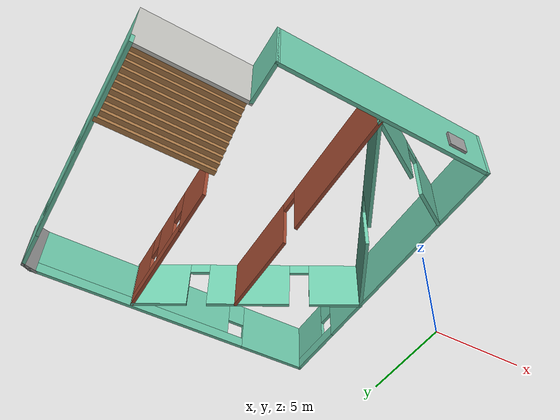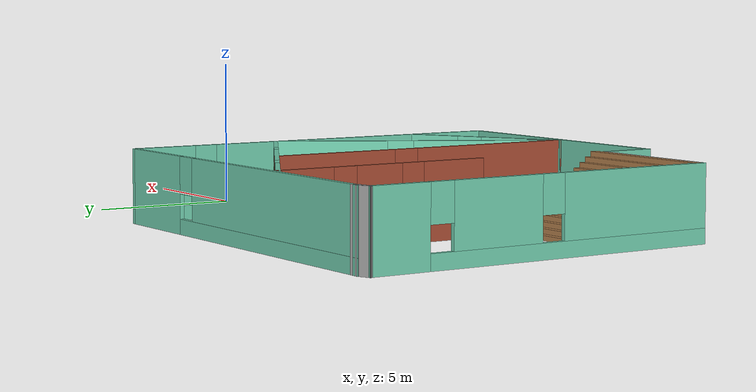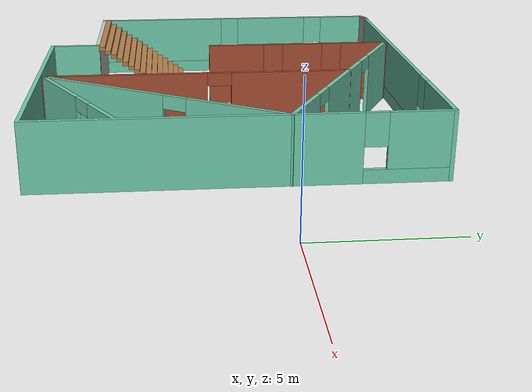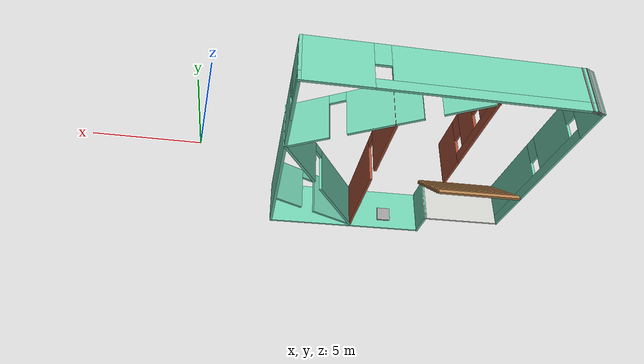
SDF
<?xml version='1.0'?>
<sdf version='1.6'>
  <model name='model'>
    <pose frame=''>-11.0761 -1.35382 0 0 -0 0</pose>
    <link name='Stairs_0'>
      <visual name='Stairs_0_Visual_0'>
        <pose frame=''>-4.53978 -1.74911 0.083333 0 -0 0</pose>
        <geometry>
          <box>
            <size>4.937 0.233333 0.166667</size>
          </box>
        </geometry>
        <material>
          <script>
            <uri>file://media/materials/scripts/gazebo.material</uri>
            <name>Gazebo/Wood</name>
          </script>
          <ambient>1 1 1 1</ambient>
        </material>
        <meta>
          <layer>0</layer>
        </meta>
      </visual>
      <collision name='Stairs_0_Collision_0'>
        <geometry>
          <box>
            <size>4.937 0.233333 0.166667</size>
          </box>
        </geometry>
        <pose frame=''>-4.53978 -1.74911 0.083333 0 -0 0</pose>
      </collision>
      <visual name='Stairs_0_Visual_1'>
        <pose frame=''>-4.53978 -1.98245 0.25 0 -0 0</pose>
        <geometry>
          <box>
            <size>4.937 0.233333 0.166667</size>
          </box>
        </geometry>
        <material>
          <script>
            <uri>file://media/materials/scripts/gazebo.material</uri>
            <name>Gazebo/Wood</name>
          </script>
          <ambient>1 1 1 1</ambient>
        </material>
        <meta>
          <layer>0</layer>
        </meta>
      </visual>
      <collision name='Stairs_0_Collision_1'>
        <geometry>
          <box>
            <size>4.937 0.233333 0.166667</size>
          </box>
        </geometry>
        <pose frame=''>-4.53978 -1.98245 0.25 0 -0 0</pose>
      </collision>
      <visual name='Stairs_0_Visual_2'>
        <pose frame=''>-4.53978 -2.21578 0.416667 0 -0 0</pose>
        <geometry>
          <box>
            <size>4.937 0.233333 0.166667</size>
          </box>
        </geometry>
        <material>
          <script>
            <uri>file://media/materials/scripts/gazebo.material</uri>
            <name>Gazebo/Wood</name>
          </script>
          <ambient>1 1 1 1</ambient>
        </material>
        <meta>
          <layer>0</layer>
        </meta>
      </visual>
      <collision name='Stairs_0_Collision_2'>
        <geometry>
          <box>
            <size>4.937 0.233333 0.166667</size>
          </box>
        </geometry>
        <pose frame=''>-4.53978 -2.21578 0.416667 0 -0 0</pose>
      </collision>
      <visual name='Stairs_0_Visual_3'>
        <pose frame=''>-4.53978 -2.44911 0.583333 0 -0 0</pose>
        <geometry>
          <box>
            <size>4.937 0.233333 0.166667</size>
          </box>
        </geometry>
        <material>
          <script>
            <uri>file://media/materials/scripts/gazebo.material</uri>
            <name>Gazebo/Wood</name>
          </script>
          <ambient>1 1 1 1</ambient>
        </material>
        <meta>
          <layer>0</layer>
        </meta>
      </visual>
      <collision name='Stairs_0_Collision_3'>
        <geometry>
          <box>
            <size>4.937 0.233333 0.166667</size>
          </box>
        </geometry>
        <pose frame=''>-4.53978 -2.44911 0.583333 0 -0 0</pose>
      </collision>
      <visual name='Stairs_0_Visual_4'>
        <pose frame=''>-4.53978 -2.68245 0.75 0 -0 0</pose>
        <geometry>
          <box>
            <size>4.937 0.233333 0.166667</size>
          </box>
        </geometry>
        <material>
          <script>
            <uri>file://media/materials/scripts/gazebo.material</uri>
            <name>Gazebo/Wood</name>
          </script>
          <ambient>1 1 1 1</ambient>
        </material>
        <meta>
          <layer>0</layer>
        </meta>
      </visual>
      <collision name='Stairs_0_Collision_4'>
        <geometry>
          <box>
            <size>4.937 0.233333 0.166667</size>
          </box>
        </geometry>
        <pose frame=''>-4.53978 -2.68245 0.75 0 -0 0</pose>
      </collision>
      <visual name='Stairs_0_Visual_5'>
        <pose frame=''>-4.53978 -2.91578 0.916667 0 -0 0</pose>
        <geometry>
          <box>
            <size>4.937 0.233333 0.166667</size>
          </box>
        </geometry>
        <material>
          <script>
            <uri>file://media/materials/scripts/gazebo.material</uri>
            <name>Gazebo/Wood</name>
          </script>
          <ambient>1 1 1 1</ambient>
        </material>
        <meta>
          <layer>0</layer>
        </meta>
      </visual>
      <collision name='Stairs_0_Collision_5'>
        <geometry>
          <box>
            <size>4.937 0.233333 0.166667</size>
          </box>
        </geometry>
        <pose frame=''>-4.53978 -2.91578 0.916667 0 -0 0</pose>
      </collision>
      <visual name='Stairs_0_Visual_6'>
        <pose frame=''>-4.53978 -3.14911 1.08333 0 -0 0</pose>
        <geometry>
          <box>
            <size>4.937 0.233333 0.166667</size>
          </box>
        </geometry>
        <material>
          <script>
            <uri>file://media/materials/scripts/gazebo.material</uri>
            <name>Gazebo/Wood</name>
          </script>
          <ambient>1 1 1 1</ambient>
        </material>
        <meta>
          <layer>0</layer>
        </meta>
      </visual>
      <collision name='Stairs_0_Collision_6'>
        <geometry>
          <box>
            <size>4.937 0.233333 0.166667</size>
          </box>
        </geometry>
        <pose frame=''>-4.53978 -3.14911 1.08333 0 -0 0</pose>
      </collision>
      <visual name='Stairs_0_Visual_7'>
        <pose frame=''>-4.53978 -3.38245 1.25 0 -0 0</pose>
        <geometry>
          <box>
            <size>4.937 0.233333 0.166667</size>
          </box>
        </geometry>
        <material>
          <script>
            <uri>file://media/materials/scripts/gazebo.material</uri>
            <name>Gazebo/Wood</name>
          </script>
          <ambient>1 1 1 1</ambient>
        </material>
        <meta>
          <layer>0</layer>
        </meta>
      </visual>
      <collision name='Stairs_0_Collision_7'>
        <geometry>
          <box>
            <size>4.937 0.233333 0.166667</size>
          </box>
        </geometry>
        <pose frame=''>-4.53978 -3.38245 1.25 0 -0 0</pose>
      </collision>
      <visual name='Stairs_0_Visual_8'>
        <pose frame=''>-4.53978 -3.61578 1.41667 0 -0 0</pose>
        <geometry>
          <box>
            <size>4.937 0.233333 0.166667</size>
          </box>
        </geometry>
        <material>
          <script>
            <uri>file://media/materials/scripts/gazebo.material</uri>
            <name>Gazebo/Wood</name>
          </script>
          <ambient>1 1 1 1</ambient>
        </material>
        <meta>
          <layer>0</layer>
        </meta>
      </visual>
      <collision name='Stairs_0_Collision_8'>
        <geometry>
          <box>
            <size>4.937 0.233333 0.166667</size>
          </box>
        </geometry>
        <pose frame=''>-4.53978 -3.61578 1.41667 0 -0 0</pose>
      </collision>
      <visual name='Stairs_0_Visual_9'>
        <pose frame=''>-4.53978 -3.84911 1.58333 0 -0 0</pose>
        <geometry>
          <box>
            <size>4.937 0.233333 0.166667</size>
          </box>
        </geometry>
        <material>
          <script>
            <uri>file://media/materials/scripts/gazebo.material</uri>
            <name>Gazebo/Wood</name>
          </script>
          <ambient>1 1 1 1</ambient>
        </material>
        <meta>
          <layer>0</layer>
        </meta>
      </visual>
      <collision name='Stairs_0_Collision_9'>
        <geometry>
          <box>
            <size>4.937 0.233333 0.166667</size>
          </box>
        </geometry>
        <pose frame=''>-4.53978 -3.84911 1.58333 0 -0 0</pose>
      </collision>
      <visual name='Stairs_0_Visual_10'>
        <pose frame=''>-4.53978 -4.08245 1.75 0 -0 0</pose>
        <geometry>
          <box>
            <size>4.937 0.233333 0.166667</size>
          </box>
        </geometry>
        <material>
          <script>
            <uri>file://media/materials/scripts/gazebo.material</uri>
            <name>Gazebo/Wood</name>
          </script>
          <ambient>1 1 1 1</ambient>
        </material>
        <meta>
          <layer>0</layer>
        </meta>
      </visual>
      <collision name='Stairs_0_Collision_10'>
        <geometry>
          <box>
            <size>4.937 0.233333 0.166667</size>
          </box>
        </geometry>
        <pose frame=''>-4.53978 -4.08245 1.75 0 -0 0</pose>
      </collision>
      <visual name='Stairs_0_Visual_11'>
        <pose frame=''>-4.53978 -4.31578 1.91667 0 -0 0</pose>
        <geometry>
          <box>
            <size>4.937 0.233333 0.166667</size>
          </box>
        </geometry>
        <material>
          <script>
            <uri>file://media/materials/scripts/gazebo.material</uri>
            <name>Gazebo/Wood</name>
          </script>
          <ambient>1 1 1 1</ambient>
        </material>
        <meta>
          <layer>0</layer>
        </meta>
      </visual>
      <collision name='Stairs_0_Collision_11'>
        <geometry>
          <box>
            <size>4.937 0.233333 0.166667</size>
          </box>
        </geometry>
        <pose frame=''>-4.53978 -4.31578 1.91667 0 -0 0</pose>
      </collision>
      <visual name='Stairs_0_Visual_12'>
        <pose frame=''>-4.53978 -4.54911 2.08333 0 -0 0</pose>
        <geometry>
          <box>
            <size>4.937 0.233333 0.166667</size>
          </box>
        </geometry>
        <material>
          <script>
            <uri>file://media/materials/scripts/gazebo.material</uri>
            <name>Gazebo/Wood</name>
          </script>
          <ambient>1 1 1 1</ambient>
        </material>
        <meta>
          <layer>0</layer>
        </meta>
      </visual>
      <collision name='Stairs_0_Collision_12'>
        <geometry>
          <box>
            <size>4.937 0.233333 0.166667</size>
          </box>
        </geometry>
        <pose frame=''>-4.53978 -4.54911 2.08333 0 -0 0</pose>
      </collision>
      <visual name='Stairs_0_Visual_13'>
        <pose frame=''>-4.53978 -4.78245 2.25 0 -0 0</pose>
        <geometry>
          <box>
            <size>4.937 0.233333 0.166667</size>
          </box>
        </geometry>
        <material>
          <script>
            <uri>file://media/materials/scripts/gazebo.material</uri>
            <name>Gazebo/Wood</name>
          </script>
          <ambient>1 1 1 1</ambient>
        </material>
        <meta>
          <layer>0</layer>
        </meta>
      </visual>
      <collision name='Stairs_0_Collision_13'>
        <geometry>
          <box>
            <size>4.937 0.233333 0.166667</size>
          </box>
        </geometry>
        <pose frame=''>-4.53978 -4.78245 2.25 0 -0 0</pose>
      </collision>
      <visual name='Stairs_0_Visual_14'>
        <pose frame=''>-4.53978 -5.01578 2.41667 0 -0 0</pose>
        <geometry>
          <box>
            <size>4.937 0.233333 0.166667</size>
          </box>
        </geometry>
        <material>
          <script>
            <uri>file://media/materials/scripts/gazebo.material</uri>
            <name>Gazebo/Wood</name>
          </script>
          <ambient>1 1 1 1</ambient>
        </material>
        <meta>
          <layer>0</layer>
        </meta>
      </visual>
      <collision name='Stairs_0_Collision_14'>
        <geometry>
          <box>
            <size>4.937 0.233333 0.166667</size>
          </box>
        </geometry>
        <pose frame=''>-4.53978 -5.01578 2.41667 0 -0 0</pose>
      </collision>
    </link>
    <link name='Wall_0'>
      <pose frame=''>-6.98409 0.83826 0 0 0 -1.5708</pose>
      <visual name='Wall_0_Visual_0'>
        <pose frame=''>-5.11709 0 1.25 0 -0 0</pose>
        <geometry>
          <box>
            <size>2.01582 0.15 2.5</size>
          </box>
        </geometry>
        <material>
          <script>
            <uri>file://media/materials/scripts/gazebo.material</uri>
            <name>Gazebo/Grey</name>
          </script>
          <ambient>0.435294 0.796078 0.67451 1</ambient>
        </material>
        <meta>
          <layer>0</layer>
        </meta>
      </visual>
      <collision name='Wall_0_Collision_0'>
        <geometry>
          <box>
            <size>2.01582 0.15 2.5</size>
          </box>
        </geometry>
        <pose frame=''>-5.11709 0 1.25 0 -0 0</pose>
      </collision>
      <visual name='Wall_0_Visual_1'>
        <pose frame=''>1.00791 0 0.25 0 -0 0</pose>
        <geometry>
          <box>
            <size>10.2342 0.15 0.5</size>
          </box>
        </geometry>
        <material>
          <script>
            <uri>file://media/materials/scripts/gazebo.material</uri>
            <name>Gazebo/Grey</name>
          </script>
          <ambient>0.435294 0.796078 0.67451 1</ambient>
        </material>
        <meta>
          <layer>0</layer>
        </meta>
      </visual>
      <collision name='Wall_0_Collision_1'>
        <geometry>
          <box>
            <size>10.2342 0.15 0.5</size>
          </box>
        </geometry>
        <pose frame=''>1.00791 0 0.25 0 -0 0</pose>
      </collision>
      <visual name='Wall_0_Visual_2'>
        <pose frame=''>-1.74077 0 1.5 0 -0 0</pose>
        <geometry>
          <box>
            <size>3.13683 0.15 2</size>
          </box>
        </geometry>
        <material>
          <script>
            <uri>file://media/materials/scripts/gazebo.material</uri>
            <name>Gazebo/Grey</name>
          </script>
          <ambient>0.435294 0.796078 0.67451 1</ambient>
        </material>
        <meta>
          <layer>0</layer>
        </meta>
      </visual>
      <collision name='Wall_0_Collision_2'>
        <geometry>
          <box>
            <size>3.13683 0.15 2</size>
          </box>
        </geometry>
        <pose frame=''>-1.74077 0 1.5 0 -0 0</pose>
      </collision>
      <visual name='Wall_0_Visual_3'>
        <pose frame=''>3.37632 0 1.5 0 -0 0</pose>
        <geometry>
          <box>
            <size>5.49735 0.15 2</size>
          </box>
        </geometry>
        <material>
          <script>
            <uri>file://media/materials/scripts/gazebo.material</uri>
            <name>Gazebo/Grey</name>
          </script>
          <ambient>0.435294 0.796078 0.67451 1</ambient>
        </material>
        <meta>
          <layer>0</layer>
        </meta>
      </visual>
      <collision name='Wall_0_Collision_3'>
        <geometry>
          <box>
            <size>5.49735 0.15 2</size>
          </box>
        </geometry>
        <pose frame=''>3.37632 0 1.5 0 -0 0</pose>
      </collision>
      <visual name='Wall_0_Visual_4'>
        <pose frame=''>-3.70918 0 1.9 0 -0 0</pose>
        <geometry>
          <box>
            <size>0.8 0.15 1.2</size>
          </box>
        </geometry>
        <material>
          <script>
            <uri>file://media/materials/scripts/gazebo.material</uri>
            <name>Gazebo/Grey</name>
          </script>
          <ambient>0.435294 0.796078 0.67451 1</ambient>
        </material>
        <meta>
          <layer>0</layer>
        </meta>
      </visual>
      <collision name='Wall_0_Collision_4'>
        <geometry>
          <box>
            <size>0.8 0.15 1.2</size>
          </box>
        </geometry>
        <pose frame=''>-3.70918 0 1.9 0 -0 0</pose>
      </collision>
      <visual name='Wall_0_Visual_5'>
        <pose frame=''>0.227647 0 1.9 0 -0 0</pose>
        <geometry>
          <box>
            <size>0.8 0.15 1.2</size>
          </box>
        </geometry>
        <material>
          <script>
            <uri>file://media/materials/scripts/gazebo.material</uri>
            <name>Gazebo/Grey</name>
          </script>
          <ambient>0.435294 0.796078 0.67451 1</ambient>
        </material>
        <meta>
          <layer>0</layer>
        </meta>
      </visual>
      <collision name='Wall_0_Collision_5'>
        <geometry>
          <box>
            <size>0.8 0.15 1.2</size>
          </box>
        </geometry>
        <pose frame=''>0.227647 0 1.9 0 -0 0</pose>
      </collision>
    </link>
    <link name='Wall_1'>
      <collision name='Wall_1_Collision'>
        <geometry>
          <box>
            <size>4.75 0.15 2.5</size>
          </box>
        </geometry>
        <pose frame=''>0 0 1.25 0 -0 0</pose>
      </collision>
      <visual name='Wall_1_Visual'>
        <pose frame=''>0 0 1.25 0 -0 0</pose>
        <geometry>
          <box>
            <size>4.75 0.15 2.5</size>
          </box>
        </geometry>
        <material>
          <script>
            <uri>file://media/materials/scripts/gazebo.material</uri>
            <name>Gazebo/CeilingTiled</name>
          </script>
          <ambient>1 1 1 1</ambient>
        </material>
        <meta>
          <layer>0</layer>
        </meta>
      </visual>
      <pose frame=''>-4.68409 -5.21174 0 0 -0 0</pose>
    </link>
    <link name='Wall_10'>
      <collision name='Wall_10_Collision'>
        <geometry>
          <box>
            <size>0.75 0.15 2.5</size>
          </box>
        </geometry>
        <pose frame=''>0 0 1.25 0 -0 0</pose>
      </collision>
      <visual name='Wall_10_Visual'>
        <pose frame=''>0 0 1.25 0 -0 0</pose>
        <geometry>
          <box>
            <size>0.75 0.15 2.5</size>
          </box>
        </geometry>
        <material>
          <script>
            <uri>file://media/materials/scripts/gazebo.material</uri>
            <name>Gazebo/Grey</name>
          </script>
          <ambient>1 1 1 1</ambient>
        </material>
        <meta>
          <layer>0</layer>
        </meta>
      </visual>
      <pose frame=''>-6.69431 6.96591 0 0 -0 0.261799</pose>
    </link>
    <link name='Wall_13'>
      <pose frame=''>-1.98325 3.1684 0 0 -0 1.5708</pose>
      <visual name='Wall_13_Visual_0'>
        <pose frame=''>-2.60909 0 1.25 0 -0 0</pose>
        <geometry>
          <box>
            <size>2.28182 0.15 2.5</size>
          </box>
        </geometry>
        <material>
          <script>
            <uri>file://media/materials/scripts/gazebo.material</uri>
            <name>Gazebo/Bricks</name>
          </script>
          <ambient>1 1 1 1</ambient>
        </material>
        <meta>
          <layer>0</layer>
        </meta>
      </visual>
      <collision name='Wall_13_Collision_0'>
        <geometry>
          <box>
            <size>2.28182 0.15 2.5</size>
          </box>
        </geometry>
        <pose frame=''>-2.60909 0 1.25 0 -0 0</pose>
      </collision>
      <visual name='Wall_13_Visual_1'>
        <pose frame=''>1.14091 0 0.25 0 -0 0</pose>
        <geometry>
          <box>
            <size>5.21818 0.15 0.5</size>
          </box>
        </geometry>
        <material>
          <script>
            <uri>file://media/materials/scripts/gazebo.material</uri>
            <name>Gazebo/Bricks</name>
          </script>
          <ambient>1 1 1 1</ambient>
        </material>
        <meta>
          <layer>0</layer>
        </meta>
      </visual>
      <collision name='Wall_13_Collision_1'>
        <geometry>
          <box>
            <size>5.21818 0.15 0.5</size>
          </box>
        </geometry>
        <pose frame=''>1.14091 0 0.25 0 -0 0</pose>
      </collision>
      <visual name='Wall_13_Visual_2'>
        <pose frame=''>0.155429 0 1.5 0 -0 0</pose>
        <geometry>
          <box>
            <size>1.64722 0.15 2</size>
          </box>
        </geometry>
        <material>
          <script>
            <uri>file://media/materials/scripts/gazebo.material</uri>
            <name>Gazebo/Bricks</name>
          </script>
          <ambient>1 1 1 1</ambient>
        </material>
        <meta>
          <layer>0</layer>
        </meta>
      </visual>
      <collision name='Wall_13_Collision_2'>
        <geometry>
          <box>
            <size>1.64722 0.15 2</size>
          </box>
        </geometry>
        <pose frame=''>0.155429 0 1.5 0 -0 0</pose>
      </collision>
      <visual name='Wall_13_Visual_3'>
        <pose frame=''>2.76452 0 1.5 0 -0 0</pose>
        <geometry>
          <box>
            <size>1.97096 0.15 2</size>
          </box>
        </geometry>
        <material>
          <script>
            <uri>file://media/materials/scripts/gazebo.material</uri>
            <name>Gazebo/Bricks</name>
          </script>
          <ambient>1 1 1 1</ambient>
        </material>
        <meta>
          <layer>0</layer>
        </meta>
      </visual>
      <collision name='Wall_13_Collision_3'>
        <geometry>
          <box>
            <size>1.97096 0.15 2</size>
          </box>
        </geometry>
        <pose frame=''>2.76452 0 1.5 0 -0 0</pose>
      </collision>
      <visual name='Wall_13_Visual_4'>
        <pose frame=''>-1.06818 0 1.9 0 -0 0</pose>
        <geometry>
          <box>
            <size>0.8 0.15 1.2</size>
          </box>
        </geometry>
        <material>
          <script>
            <uri>file://media/materials/scripts/gazebo.material</uri>
            <name>Gazebo/Bricks</name>
          </script>
          <ambient>1 1 1 1</ambient>
        </material>
        <meta>
          <layer>0</layer>
        </meta>
      </visual>
      <collision name='Wall_13_Collision_4'>
        <geometry>
          <box>
            <size>0.8 0.15 1.2</size>
          </box>
        </geometry>
        <pose frame=''>-1.06818 0 1.9 0 -0 0</pose>
      </collision>
      <visual name='Wall_13_Visual_5'>
        <pose frame=''>1.37904 0 1.9 0 -0 0</pose>
        <geometry>
          <box>
            <size>0.8 0.15 1.2</size>
          </box>
        </geometry>
        <material>
          <script>
            <uri>file://media/materials/scripts/gazebo.material</uri>
            <name>Gazebo/Bricks</name>
          </script>
          <ambient>1 1 1 1</ambient>
        </material>
        <meta>
          <layer>0</layer>
        </meta>
      </visual>
      <collision name='Wall_13_Collision_5'>
        <geometry>
          <box>
            <size>0.8 0.15 1.2</size>
          </box>
        </geometry>
        <pose frame=''>1.37904 0 1.9 0 -0 0</pose>
      </collision>
    </link>
    <link name='Wall_14'>
      <pose frame=''>2.49843 4.25591 0 0 0 -0.523599</pose>
      <visual name='Wall_14_Visual_0'>
        <pose frame=''>-3.9936 0 1.25 0 -0 0</pose>
        <geometry>
          <box>
            <size>2.51281 0.15 2.5</size>
          </box>
        </geometry>
        <material>
          <script>
            <uri>file://media/materials/scripts/gazebo.material</uri>
            <name>Gazebo/Grey</name>
          </script>
          <ambient>0.435294 0.796078 0.67451 1</ambient>
        </material>
        <meta>
          <layer>0</layer>
        </meta>
      </visual>
      <collision name='Wall_14_Collision_0'>
        <geometry>
          <box>
            <size>2.51281 0.15 2.5</size>
          </box>
        </geometry>
        <pose frame=''>-3.9936 0 1.25 0 -0 0</pose>
      </collision>
      <visual name='Wall_14_Visual_1'>
        <pose frame=''>0.048779 0 1.25 0 -0 0</pose>
        <geometry>
          <box>
            <size>3.77195 0.15 2.5</size>
          </box>
        </geometry>
        <material>
          <script>
            <uri>file://media/materials/scripts/gazebo.material</uri>
            <name>Gazebo/Grey</name>
          </script>
          <ambient>0.435294 0.796078 0.67451 1</ambient>
        </material>
        <meta>
          <layer>0</layer>
        </meta>
      </visual>
      <collision name='Wall_14_Collision_1'>
        <geometry>
          <box>
            <size>3.77195 0.15 2.5</size>
          </box>
        </geometry>
        <pose frame=''>0.048779 0 1.25 0 -0 0</pose>
      </collision>
      <visual name='Wall_14_Visual_2'>
        <pose frame=''>4.04238 0 1.25 0 -0 0</pose>
        <geometry>
          <box>
            <size>2.41525 0.15 2.5</size>
          </box>
        </geometry>
        <material>
          <script>
            <uri>file://media/materials/scripts/gazebo.material</uri>
            <name>Gazebo/Grey</name>
          </script>
          <ambient>0.435294 0.796078 0.67451 1</ambient>
        </material>
        <meta>
          <layer>0</layer>
        </meta>
      </visual>
      <collision name='Wall_14_Collision_2'>
        <geometry>
          <box>
            <size>2.41525 0.15 2.5</size>
          </box>
        </geometry>
        <pose frame=''>4.04238 0 1.25 0 -0 0</pose>
      </collision>
      <visual name='Wall_14_Visual_3'>
        <pose frame=''>-2.2872 0 2.25 0 -0 0</pose>
        <geometry>
          <box>
            <size>0.9 0.15 0.5</size>
          </box>
        </geometry>
        <material>
          <script>
            <uri>file://media/materials/scripts/gazebo.material</uri>
            <name>Gazebo/Grey</name>
          </script>
          <ambient>0.435294 0.796078 0.67451 1</ambient>
        </material>
        <meta>
          <layer>0</layer>
        </meta>
      </visual>
      <collision name='Wall_14_Collision_3'>
        <geometry>
          <box>
            <size>0.9 0.15 0.5</size>
          </box>
        </geometry>
        <pose frame=''>-2.2872 0 2.25 0 -0 0</pose>
      </collision>
      <visual name='Wall_14_Visual_4'>
        <pose frame=''>2.38475 0 2.25 0 -0 0</pose>
        <geometry>
          <box>
            <size>0.9 0.15 0.5</size>
          </box>
        </geometry>
        <material>
          <script>
            <uri>file://media/materials/scripts/gazebo.material</uri>
            <name>Gazebo/Grey</name>
          </script>
          <ambient>0.435294 0.796078 0.67451 1</ambient>
        </material>
        <meta>
          <layer>0</layer>
        </meta>
      </visual>
      <collision name='Wall_14_Collision_4'>
        <geometry>
          <box>
            <size>0.9 0.15 0.5</size>
          </box>
        </geometry>
        <pose frame=''>2.38475 0 2.25 0 -0 0</pose>
      </collision>
    </link>
    <link name='Wall_15'>
      <pose frame=''>4.51761 -2.59677 0 0 0 -2.0944</pose>
      <visual name='Wall_15_Visual_0'>
        <pose frame=''>-3.01974 0 1.25 0 -0 0</pose>
        <geometry>
          <box>
            <size>3.96052 0.15 2.5</size>
          </box>
        </geometry>
        <material>
          <script>
            <uri>file://media/materials/scripts/gazebo.material</uri>
            <name>Gazebo/Grey</name>
          </script>
          <ambient>0.435294 0.796078 0.67451 1</ambient>
        </material>
        <meta>
          <layer>0</layer>
        </meta>
      </visual>
      <collision name='Wall_15_Collision_0'>
        <geometry>
          <box>
            <size>3.96052 0.15 2.5</size>
          </box>
        </geometry>
        <pose frame=''>-3.01974 0 1.25 0 -0 0</pose>
      </collision>
      <visual name='Wall_15_Visual_1'>
        <pose frame=''>2.43026 0 1.25 0 -0 0</pose>
        <geometry>
          <box>
            <size>5.13948 0.15 2.5</size>
          </box>
        </geometry>
        <material>
          <script>
            <uri>file://media/materials/scripts/gazebo.material</uri>
            <name>Gazebo/Grey</name>
          </script>
          <ambient>0.435294 0.796078 0.67451 1</ambient>
        </material>
        <meta>
          <layer>0</layer>
        </meta>
      </visual>
      <collision name='Wall_15_Collision_1'>
        <geometry>
          <box>
            <size>5.13948 0.15 2.5</size>
          </box>
        </geometry>
        <pose frame=''>2.43026 0 1.25 0 -0 0</pose>
      </collision>
      <visual name='Wall_15_Visual_2'>
        <pose frame=''>-0.589479 0 2.25 0 -0 0</pose>
        <geometry>
          <box>
            <size>0.9 0.15 0.5</size>
          </box>
        </geometry>
        <material>
          <script>
            <uri>file://media/materials/scripts/gazebo.material</uri>
            <name>Gazebo/Grey</name>
          </script>
          <ambient>0.435294 0.796078 0.67451 1</ambient>
        </material>
        <meta>
          <layer>0</layer>
        </meta>
      </visual>
      <collision name='Wall_15_Collision_2'>
        <geometry>
          <box>
            <size>0.9 0.15 0.5</size>
          </box>
        </geometry>
        <pose frame=''>-0.589479 0 2.25 0 -0 0</pose>
      </collision>
    </link>
    <link name='Wall_16'>
      <pose frame=''>4.47999 -5.46195 0 0 -0 0.523599</pose>
      <visual name='Wall_16_Visual_0'>
        <pose frame=''>-1.38826 0 1.25 0 -0 0</pose>
        <geometry>
          <box>
            <size>2.97348 0.15 2.5</size>
          </box>
        </geometry>
        <material>
          <script>
            <uri>file://media/materials/scripts/gazebo.material</uri>
            <name>Gazebo/Grey</name>
          </script>
          <ambient>0.435294 0.796078 0.67451 1</ambient>
        </material>
        <meta>
          <layer>0</layer>
        </meta>
      </visual>
      <collision name='Wall_16_Collision_0'>
        <geometry>
          <box>
            <size>2.97348 0.15 2.5</size>
          </box>
        </geometry>
        <pose frame=''>-1.38826 0 1.25 0 -0 0</pose>
      </collision>
      <visual name='Wall_16_Visual_1'>
        <pose frame=''>1.93674 0 1.25 0 -0 0</pose>
        <geometry>
          <box>
            <size>1.87652 0.15 2.5</size>
          </box>
        </geometry>
        <material>
          <script>
            <uri>file://media/materials/scripts/gazebo.material</uri>
            <name>Gazebo/Grey</name>
          </script>
          <ambient>0.435294 0.796078 0.67451 1</ambient>
        </material>
        <meta>
          <layer>0</layer>
        </meta>
      </visual>
      <collision name='Wall_16_Collision_1'>
        <geometry>
          <box>
            <size>1.87652 0.15 2.5</size>
          </box>
        </geometry>
        <pose frame=''>1.93674 0 1.25 0 -0 0</pose>
      </collision>
      <visual name='Wall_16_Visual_2'>
        <pose frame=''>0.548482 0 2.25 0 -0 0</pose>
        <geometry>
          <box>
            <size>0.9 0.15 0.5</size>
          </box>
        </geometry>
        <material>
          <script>
            <uri>file://media/materials/scripts/gazebo.material</uri>
            <name>Gazebo/Grey</name>
          </script>
          <ambient>0.435294 0.796078 0.67451 1</ambient>
        </material>
        <meta>
          <layer>0</layer>
        </meta>
      </visual>
      <collision name='Wall_16_Collision_2'>
        <geometry>
          <box>
            <size>0.9 0.15 0.5</size>
          </box>
        </geometry>
        <pose frame=''>0.548482 0 2.25 0 -0 0</pose>
      </collision>
    </link>
    <link name='Wall_19'>
      <pose frame=''>2.05511 -1.18694 0 0 -0 1.5708</pose>
      <visual name='Wall_19_Visual_0'>
        <pose frame=''>-2.70662 0 1.25 0 -0 0</pose>
        <geometry>
          <box>
            <size>6.08675 0.15 2.5</size>
          </box>
        </geometry>
        <material>
          <script>
            <uri>file://media/materials/scripts/gazebo.material</uri>
            <name>Gazebo/Bricks</name>
          </script>
          <ambient>1 1 1 1</ambient>
        </material>
        <meta>
          <layer>0</layer>
        </meta>
      </visual>
      <collision name='Wall_19_Collision_0'>
        <geometry>
          <box>
            <size>6.08675 0.15 2.5</size>
          </box>
        </geometry>
        <pose frame=''>-2.70662 0 1.25 0 -0 0</pose>
      </collision>
      <visual name='Wall_19_Visual_1'>
        <pose frame=''>3.49337 0 1.25 0 -0 0</pose>
        <geometry>
          <box>
            <size>4.51325 0.15 2.5</size>
          </box>
        </geometry>
        <material>
          <script>
            <uri>file://media/materials/scripts/gazebo.material</uri>
            <name>Gazebo/Bricks</name>
          </script>
          <ambient>1 1 1 1</ambient>
        </material>
        <meta>
          <layer>0</layer>
        </meta>
      </visual>
      <collision name='Wall_19_Collision_1'>
        <geometry>
          <box>
            <size>4.51325 0.15 2.5</size>
          </box>
        </geometry>
        <pose frame=''>3.49337 0 1.25 0 -0 0</pose>
      </collision>
      <visual name='Wall_19_Visual_2'>
        <pose frame=''>0.786751 0 2.25 0 -0 0</pose>
        <geometry>
          <box>
            <size>0.9 0.15 0.5</size>
          </box>
        </geometry>
        <material>
          <script>
            <uri>file://media/materials/scripts/gazebo.material</uri>
            <name>Gazebo/Bricks</name>
          </script>
          <ambient>1 1 1 1</ambient>
        </material>
        <meta>
          <layer>0</layer>
        </meta>
      </visual>
      <collision name='Wall_19_Collision_2'>
        <geometry>
          <box>
            <size>0.9 0.15 0.5</size>
          </box>
        </geometry>
        <pose frame=''>0.786751 0 2.25 0 -0 0</pose>
      </collision>
    </link>
    <link name='Wall_2'>
      <collision name='Wall_2_Collision'>
        <geometry>
          <box>
            <size>2 0.15 2.5</size>
          </box>
        </geometry>
        <pose frame=''>0 0 1.25 0 -0 0</pose>
      </collision>
      <visual name='Wall_2_Visual'>
        <pose frame=''>0 0 1.25 0 -0 0</pose>
        <geometry>
          <box>
            <size>2 0.15 2.5</size>
          </box>
        </geometry>
        <material>
          <script>
            <uri>file://media/materials/scripts/gazebo.material</uri>
            <name>Gazebo/Grey</name>
          </script>
          <ambient>0.435294 0.796078 0.67451 1</ambient>
        </material>
        <meta>
          <layer>0</layer>
        </meta>
      </visual>
      <pose frame=''>-2.38409 -6.13674 0 0 0 -1.5708</pose>
    </link>
    <link name='Wall_3'>
      <collision name='Wall_3_Collision'>
        <geometry>
          <box>
            <size>9.5 0.15 2.5</size>
          </box>
        </geometry>
        <pose frame=''>0 0 1.25 0 -0 0</pose>
      </collision>
      <visual name='Wall_3_Visual'>
        <pose frame=''>0 0 1.25 0 -0 0</pose>
        <geometry>
          <box>
            <size>9.5 0.15 2.5</size>
          </box>
        </geometry>
        <material>
          <script>
            <uri>file://media/materials/scripts/gazebo.material</uri>
            <name>Gazebo/Grey</name>
          </script>
          <ambient>0.435294 0.796078 0.67451 1</ambient>
        </material>
        <meta>
          <layer>0</layer>
        </meta>
      </visual>
      <pose frame=''>2.29091 -7.06174 0 0 -0 0</pose>
    </link>
    <link name='Wall_4'>
      <pose frame=''>6.96591 -0.011739 0 0 -0 1.5708</pose>
      <visual name='Wall_4_Visual_0'>
        <pose frame=''>-1.53611 0 1.25 0 -0 0</pose>
        <geometry>
          <box>
            <size>11.1778 0.15 2.5</size>
          </box>
        </geometry>
        <material>
          <script>
            <uri>file://media/materials/scripts/gazebo.material</uri>
            <name>Gazebo/Grey</name>
          </script>
          <ambient>0.435294 0.796078 0.67451 1</ambient>
        </material>
        <meta>
          <layer>0</layer>
        </meta>
      </visual>
      <collision name='Wall_4_Collision_0'>
        <geometry>
          <box>
            <size>11.1778 0.15 2.5</size>
          </box>
        </geometry>
        <pose frame=''>-1.53611 0 1.25 0 -0 0</pose>
      </collision>
      <visual name='Wall_4_Visual_1'>
        <pose frame=''>5.58889 0 0.25 0 -0 0</pose>
        <geometry>
          <box>
            <size>3.07222 0.15 0.5</size>
          </box>
        </geometry>
        <material>
          <script>
            <uri>file://media/materials/scripts/gazebo.material</uri>
            <name>Gazebo/Grey</name>
          </script>
          <ambient>0.435294 0.796078 0.67451 1</ambient>
        </material>
        <meta>
          <layer>0</layer>
        </meta>
      </visual>
      <collision name='Wall_4_Collision_1'>
        <geometry>
          <box>
            <size>3.07222 0.15 0.5</size>
          </box>
        </geometry>
        <pose frame=''>5.58889 0 0.25 0 -0 0</pose>
      </collision>
      <visual name='Wall_4_Visual_2'>
        <pose frame=''>5.98889 0 1.5 0 -0 0</pose>
        <geometry>
          <box>
            <size>2.27222 0.15 2</size>
          </box>
        </geometry>
        <material>
          <script>
            <uri>file://media/materials/scripts/gazebo.material</uri>
            <name>Gazebo/Grey</name>
          </script>
          <ambient>0.435294 0.796078 0.67451 1</ambient>
        </material>
        <meta>
          <layer>0</layer>
        </meta>
      </visual>
      <collision name='Wall_4_Collision_2'>
        <geometry>
          <box>
            <size>2.27222 0.15 2</size>
          </box>
        </geometry>
        <pose frame=''>5.98889 0 1.5 0 -0 0</pose>
      </collision>
      <visual name='Wall_4_Visual_3'>
        <pose frame=''>4.45278 0 1.9 0 -0 0</pose>
        <geometry>
          <box>
            <size>0.8 0.15 1.2</size>
          </box>
        </geometry>
        <material>
          <script>
            <uri>file://media/materials/scripts/gazebo.material</uri>
            <name>Gazebo/Grey</name>
          </script>
          <ambient>0.435294 0.796078 0.67451 1</ambient>
        </material>
        <meta>
          <layer>0</layer>
        </meta>
      </visual>
      <collision name='Wall_4_Collision_3'>
        <geometry>
          <box>
            <size>0.8 0.15 1.2</size>
          </box>
        </geometry>
        <pose frame=''>4.45278 0 1.9 0 -0 0</pose>
      </collision>
    </link>
    <link name='Wall_5'>
      <pose frame=''>0.165914 7.03826 0 0 -0 3.14159</pose>
      <visual name='Wall_5_Visual_0'>
        <pose frame=''>-5.19634 0 1.25 0 -0 0</pose>
        <geometry>
          <box>
            <size>3.35732 0.15 2.5</size>
          </box>
        </geometry>
        <material>
          <script>
            <uri>file://media/materials/scripts/gazebo.material</uri>
            <name>Gazebo/Grey</name>
          </script>
          <ambient>0.435294 0.796078 0.67451 1</ambient>
        </material>
        <meta>
          <layer>0</layer>
        </meta>
      </visual>
      <collision name='Wall_5_Collision_0'>
        <geometry>
          <box>
            <size>3.35732 0.15 2.5</size>
          </box>
        </geometry>
        <pose frame=''>-5.19634 0 1.25 0 -0 0</pose>
      </collision>
      <visual name='Wall_5_Visual_1'>
        <pose frame=''>1.67866 0 0.25 0 -0 0</pose>
        <geometry>
          <box>
            <size>10.3927 0.15 0.5</size>
          </box>
        </geometry>
        <material>
          <script>
            <uri>file://media/materials/scripts/gazebo.material</uri>
            <name>Gazebo/Grey</name>
          </script>
          <ambient>0.435294 0.796078 0.67451 1</ambient>
        </material>
        <meta>
          <layer>0</layer>
        </meta>
      </visual>
      <collision name='Wall_5_Collision_1'>
        <geometry>
          <box>
            <size>10.3927 0.15 0.5</size>
          </box>
        </geometry>
        <pose frame=''>1.67866 0 0.25 0 -0 0</pose>
      </collision>
      <visual name='Wall_5_Visual_2'>
        <pose frame=''>2.07866 0 1.5 0 -0 0</pose>
        <geometry>
          <box>
            <size>9.59268 0.15 2</size>
          </box>
        </geometry>
        <material>
          <script>
            <uri>file://media/materials/scripts/gazebo.material</uri>
            <name>Gazebo/Grey</name>
          </script>
          <ambient>0.435294 0.796078 0.67451 1</ambient>
        </material>
        <meta>
          <layer>0</layer>
        </meta>
      </visual>
      <collision name='Wall_5_Collision_2'>
        <geometry>
          <box>
            <size>9.59268 0.15 2</size>
          </box>
        </geometry>
        <pose frame=''>2.07866 0 1.5 0 -0 0</pose>
      </collision>
      <visual name='Wall_5_Visual_3'>
        <pose frame=''>-3.11768 0 1.9 0 -0 0</pose>
        <geometry>
          <box>
            <size>0.8 0.15 1.2</size>
          </box>
        </geometry>
        <material>
          <script>
            <uri>file://media/materials/scripts/gazebo.material</uri>
            <name>Gazebo/Grey</name>
          </script>
          <ambient>0.435294 0.796078 0.67451 1</ambient>
        </material>
        <meta>
          <layer>0</layer>
        </meta>
      </visual>
      <collision name='Wall_5_Collision_3'>
        <geometry>
          <box>
            <size>0.8 0.15 1.2</size>
          </box>
        </geometry>
        <pose frame=''>-3.11768 0 1.9 0 -0 0</pose>
      </collision>
    </link>
    <link name='Wall_7'>
      <collision name='Wall_7_Collision'>
        <geometry>
          <box>
            <size>0.15 0.15 2.5</size>
          </box>
        </geometry>
        <pose frame=''>0 0 1.25 0 -0 0</pose>
      </collision>
      <visual name='Wall_7_Visual'>
        <pose frame=''>0 0 1.25 0 -0 0</pose>
        <geometry>
          <box>
            <size>0.15 0.15 2.5</size>
          </box>
        </geometry>
        <material>
          <script>
            <uri>file://media/materials/scripts/gazebo.material</uri>
            <name>Gazebo/Grey</name>
          </script>
          <ambient>1 1 1 1</ambient>
        </material>
        <meta>
          <layer>0</layer>
        </meta>
      </visual>
      <pose frame=''>-6.63408 7.03826 0 0 -0 0</pose>
    </link>
    <link name='Wall_9'>
      <collision name='Wall_9_Collision'>
        <geometry>
          <box>
            <size>0.530789 0.15 2.5</size>
          </box>
        </geometry>
        <pose frame=''>0 0 1.25 0 -0 0</pose>
      </collision>
      <visual name='Wall_9_Visual'>
        <pose frame=''>0 0 1.25 0 -0 0</pose>
        <geometry>
          <box>
            <size>0.530789 0.15 2.5</size>
          </box>
        </geometry>
        <material>
          <script>
            <uri>file://media/materials/scripts/gazebo.material</uri>
            <name>Gazebo/Grey</name>
          </script>
          <ambient>1 1 1 1</ambient>
        </material>
        <meta>
          <layer>0</layer>
        </meta>
      </visual>
      <pose frame=''>-6.80909 6.96326 0 0 0 -2.7367</pose>
    </link>
    <link name='Window_3'>
      <collision name='Window_3_Collision'>
        <geometry>
          <box>
            <size>0.8 0.17 0.8</size>
          </box>
        </geometry>
        <pose frame=''>0 0 0.4 0 -0 0</pose>
      </collision>
      <visual name='Window_3_Visual'>
        <pose frame=''>0 0 0.4 0 -0 0</pose>
        <geometry>
          <box>
            <size>0.8 0.17 0.8</size>
          </box>
        </geometry>
        <material>
          <script>
            <uri>file://media/materials/scripts/gazebo.material</uri>
            <name>Gazebo/Grey</name>
          </script>
        </material>
      </visual>
      <pose frame=''>5.51801 -7.15665 0.5 0 -0 0</pose>
    </link>
    <link name='Window_6'>
      <collision name='Window_6_Collision'>
        <geometry>
          <box>
            <size>0.8 0.17 0.8</size>
          </box>
        </geometry>
        <pose frame=''>0 0 0.4 0 -0 0</pose>
      </collision>
      <visual name='Window_6_Visual'>
        <pose frame=''>0 0 0.4 0 -0 0</pose>
        <geometry>
          <box>
            <size>0.8 0.17 0.8</size>
          </box>
        </geometry>
        <material>
          <script>
            <uri>file://media/materials/scripts/gazebo.material</uri>
            <name>Gazebo/Grey</name>
          </script>
        </material>
      </visual>
      <pose frame=''>-0.174435 -6.94384 0.5 0 -0 0</pose>
    </link>
    <static>1</static>
  </model>
</sdf>
